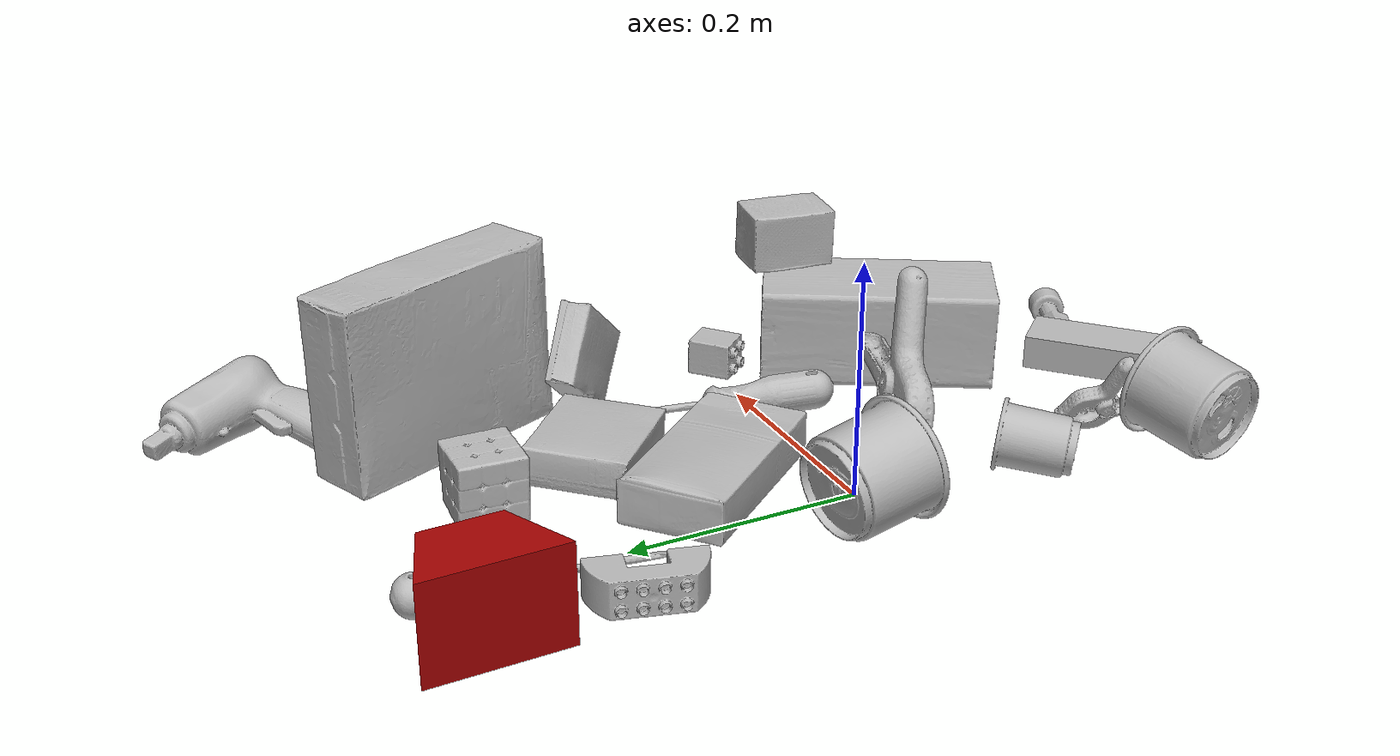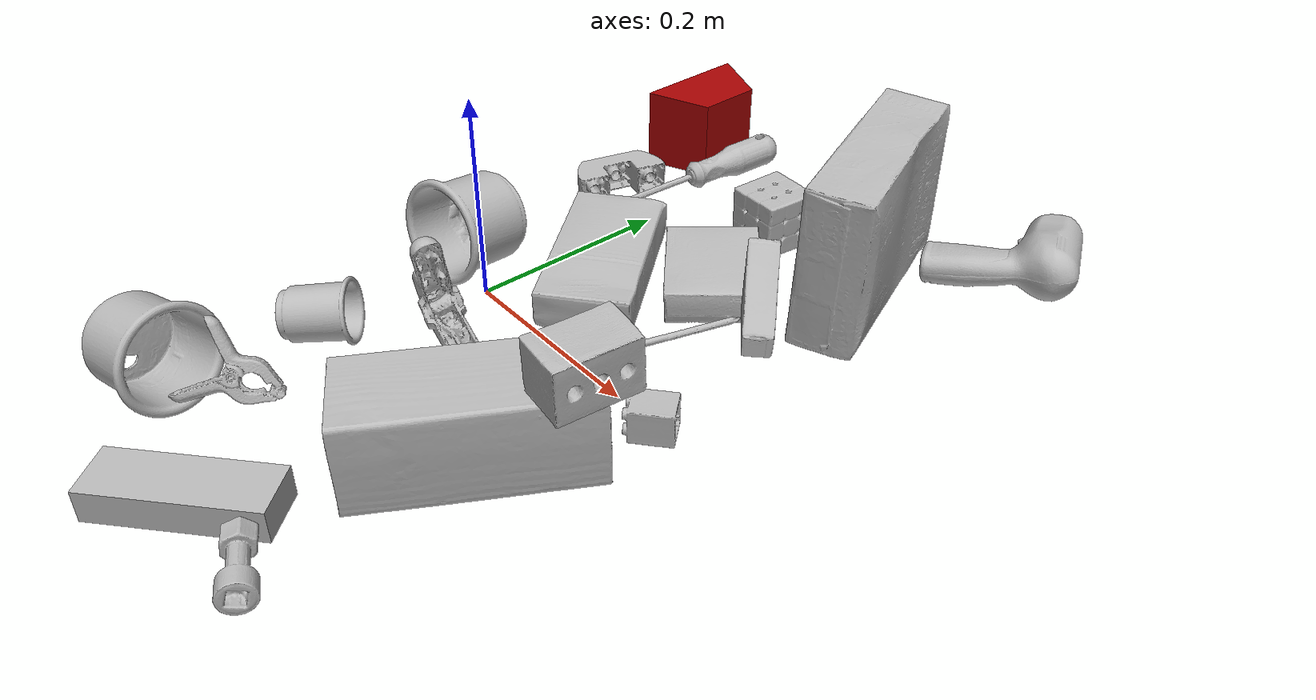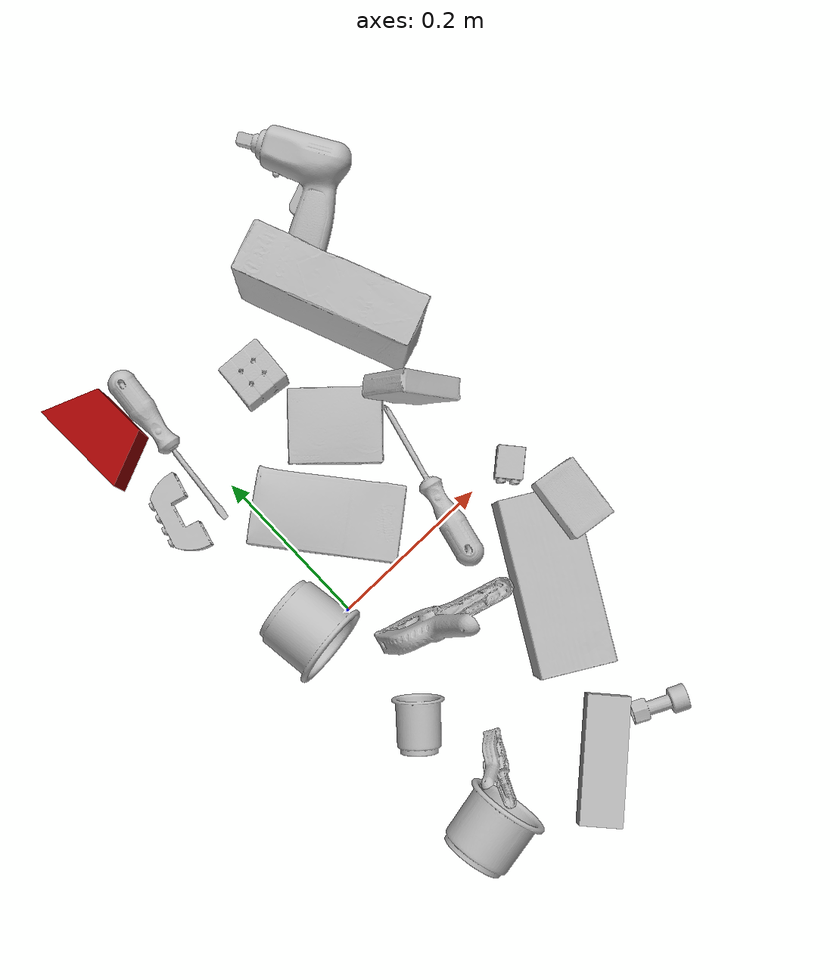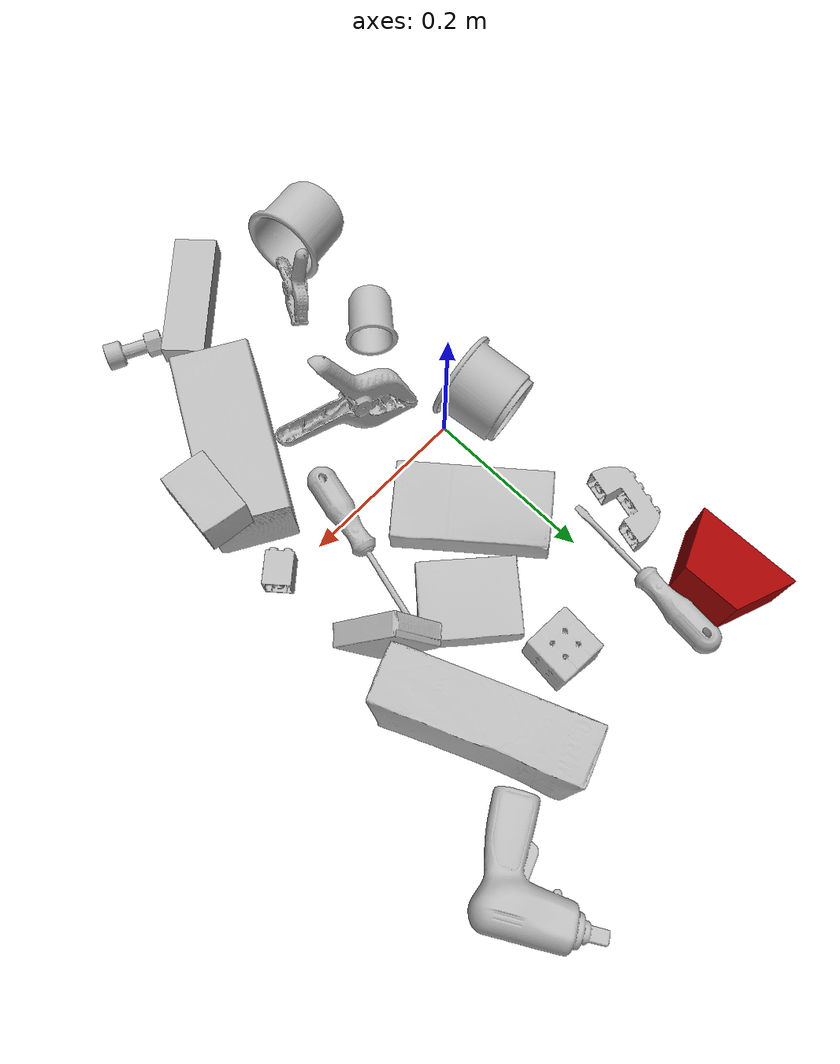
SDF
<sdf version="1.4">
  <world name="default">
    <light name="light1" type="point">
      <pose>0 0 1 0 0 0</pose>
      <diffuse>3 3 3 1</diffuse>
      <specular>3 3 3 1</specular>
    </light>
    <light name="light2" type="point">
      <pose>0 0.5 2 0 0 0</pose>
      <diffuse>1 1 1 1</diffuse>
      <specular>1 1 1 1</specular>
    </light>
    <light name="light3" type="point">
      <pose>0 0.5 2 0 0 0</pose>
      <diffuse>3 3 3 1</diffuse>
      <specular>3 3 3 1</specular>
    </light>
    <scene>
      <ambient>0.7 0.7 0.7</ambient>
    </scene>
    <model name="box21">
      <link name="link_box21">
        <collision name="default">
          <geometry>
            <mesh>
              <uri>model://cracker_box/collision_meshes/collision.obj</uri>
              <scale>1.0 1.0 1.0</scale>
            </mesh>
          </geometry>
          <surface>
            <friction>
              <ode>
                <mu>0.5</mu>
                <mu2>0.5</mu2>
              </ode>
            </friction>
          <contact>
        <ode>
            <max_vel>0</max_vel>
            <min_depth>0.0001</min_depth>
            <kp>1e8</kp>
        </ode>
    </contact></surface>
        </collision>
        <visual name="default">
          <geometry>
            <mesh>
              <uri>model://cracker_box/visual_meshes/visual.dae</uri>
              <scale>1.0 1.0 1.0</scale>
            </mesh>
          </geometry>
        </visual>
        <inertial>
          <mass>3.1344146728515625</mass>
          <pose>0.0009464123286306858 0.00025434247800149024 -0.0017029535956680775 -0.0003162077429326042 -0.011106488668875016 0.0025467950024750923</pose>
          <inertia>
            <ixx>0.0079725515</ixx>
            <iyy>0.01316425</iyy>
            <izz>0.01878659</izz>
            <ixy>0</ixy>
            <ixz>0</ixz>
            <iyz>0</iyz>
          </inertia>
        </inertial>
      </link>
      <pose>0.23143577575683594 0.2693440318107605 0.08213844150304794 -1.6031940600733603 0.003786523263994499 -1.1975162881143697</pose>
    </model>
    <model name="box22">
      <link name="link_box22">
        <collision name="default">
          <geometry>
            <mesh>
              <uri>model://jenga/collision_meshes/collision.obj</uri>
              <scale>1.0 1.0 1.0</scale>
            </mesh>
          </geometry>
          <surface>
            <friction>
              <ode>
                <mu>0.5</mu>
                <mu2>0.5</mu2>
              </ode>
            </friction>
          <contact>
        <ode>
            <max_vel>0</max_vel>
            <min_depth>0.0001</min_depth>
            <kp>1e8</kp>
        </ode>
    </contact></surface>
        </collision>
        <visual name="default">
          <geometry>
            <mesh>
              <uri>model://jenga/visual_meshes/visual.dae</uri>
              <scale>1.0 1.0 1.0</scale>
            </mesh>
          </geometry>
        </visual>
        <inertial>
          <mass>0.23869852721691132</mass>
          <pose>-2.502855807051674e-07 -0.0001025000965455547 -4.092339804628864e-05 0.0 -7.34215461761844e-07 0.0</pose>
          <inertia>
            <ixx>6.605367e-05</ixx>
            <iyy>0.00044757788</iyy>
            <izz>0.00047782745</izz>
            <ixy>0</ixy>
            <ixz>0</ixz>
            <iyz>0</iyz>
          </inertia>
        </inertial>
      </link>
      <pose>0.09389596432447433 -0.32775765657424927 0.015000000596046448 1.0762195257441099e-07 -2.7861496550805345e-09 0.7344153541987174</pose>
    </model>
    <model name="box23">
      <link name="link_box23">
        <collision name="default">
          <geometry>
            <mesh>
              <uri>model://rubiks_cube/collision_meshes/collision.obj</uri>
              <scale>1.0 1.0 1.0</scale>
            </mesh>
          </geometry>
          <surface>
            <friction>
              <ode>
                <mu>0.5</mu>
                <mu2>0.5</mu2>
              </ode>
            </friction>
          <contact>
        <ode>
            <max_vel>0</max_vel>
            <min_depth>0.0001</min_depth>
            <kp>1e8</kp>
        </ode>
    </contact></surface>
        </collision>
        <visual name="default">
          <geometry>
            <mesh>
              <uri>model://rubiks_cube/visual_meshes/visual.dae</uri>
              <scale>1.0 1.0 1.0</scale>
            </mesh>
          </geometry>
        </visual>
        <inertial>
          <mass>0.26229962706565857</mass>
          <pose>2.6721041649580002e-05 5.2569666877388954e-05 -7.264316082000732e-06 -0.05467189873579491 -0.09814109048128683 -0.0344550730209751</pose>
          <inertia>
            <ixx>0.00014493814</ixx>
            <iyy>0.00014426222</iyy>
            <izz>0.00014613918</izz>
            <ixy>0</ixy>
            <ixz>0</ixz>
            <iyz>0</iyz>
          </inertia>
        </inertial>
      </link>
      <pose>0.1071087047457695 0.27290740609169006 0.028679020702838898 -9.324811627033876e-08 -1.8194542610810362e-08 3.0711828806125405</pose>
    </model>
    <model name="cup1">
      <link name="link_cup1">
        <collision name="default">
          <geometry>
            <mesh>
              <uri>model://j_cups/collision_meshes/collision.obj</uri>
              <scale>1.0 1.0 1.0</scale>
            </mesh>
          </geometry>
          <surface>
            <friction>
              <ode>
                <mu>0.5</mu>
                <mu2>0.5</mu2>
              </ode>
            </friction>
          <contact>
        <ode>
            <max_vel>0</max_vel>
            <min_depth>0.0001</min_depth>
            <kp>1e8</kp>
        </ode>
    </contact></surface>
        </collision>
        <visual name="default">
          <geometry>
            <mesh>
              <uri>model://j_cups/visual_meshes/visual.dae</uri>
              <scale>1.0 1.0 1.0</scale>
            </mesh>
          </geometry>
        </visual>
        <inertial>
          <mass>0.10388943552970886</mass>
          <pose>0.0006164857186377048 0.0005398984649218619 -0.0013479008339345455 0.03030360356214998 0.03758024855654077 0.43868424196936845</pose>
          <inertia>
            <ixx>0.00015254253</ixx>
            <iyy>0.0001541288</iyy>
            <izz>0.00017584988</izz>
            <ixy>0</ixy>
            <ixz>0</ixz>
            <iyz>0</iyz>
          </inertia>
        </inertial>
      </link>
      <pose>-0.047990474849939346 0.017350109294056892 0.04709629714488983 -1.4431915253509904 0.09989863992522482 -2.9851068744913105</pose>
    </model>
    <model name="cup2">
      <link name="link_cup2">
        <collision name="default">
          <geometry>
            <mesh>
              <uri>model://i_cups/collision_meshes/collision.obj</uri>
              <scale>1.0 1.0 1.0</scale>
            </mesh>
          </geometry>
          <surface>
            <friction>
              <ode>
                <mu>0.5</mu>
                <mu2>0.5</mu2>
              </ode>
            </friction>
          <contact>
        <ode>
            <max_vel>0</max_vel>
            <min_depth>0.0001</min_depth>
            <kp>1e8</kp>
        </ode>
    </contact></surface>
        </collision>
        <visual name="default">
          <geometry>
            <mesh>
              <uri>model://i_cups/visual_meshes/visual.dae</uri>
              <scale>1.0 1.0 1.0</scale>
            </mesh>
          </geometry>
        </visual>
        <inertial>
          <mass>0.057485051453113556</mass>
          <pose>0.00011239853483857587 0.00016797262651380152 -0.000857901235576719 -0.028982969026390082 -0.03987335468246028 -0.34591562504163004</pose>
          <inertia>
            <ixx>7.958892e-05</ixx>
            <iyy>8.029015e-05</iyy>
            <izz>8.8953486e-05</izz>
            <ixy>0</ixy>
            <ixz>0</ixz>
            <iyz>0</iyz>
          </inertia>
        </inertial>
      </link>
      <pose>-0.05480831488966942 -0.29152294993400574 0.04500595107674599 -1.4174127263995329 0.6162403617880504 -1.2706496090664912</pose>
    </model>
    <model name="box11">
      <link name="link_box11">
        <collision name="default">
          <geometry>
            <mesh>
              <uri>model://wood_block/collision_meshes/collision.obj</uri>
              <scale>1.0 1.0 1.0</scale>
            </mesh>
          </geometry>
          <surface>
            <friction>
              <ode>
                <mu>0.5</mu>
                <mu2>0.5</mu2>
              </ode>
            </friction>
          <contact>
        <ode>
            <max_vel>0</max_vel>
            <min_depth>0.0001</min_depth>
            <kp>1e8</kp>
        </ode>
    </contact></surface>
        </collision>
        <visual name="default">
          <geometry>
            <mesh>
              <uri>model://wood_block/visual_meshes/visual.dae</uri>
              <scale>1.0 1.0 1.0</scale>
            </mesh>
          </geometry>
        </visual>
        <inertial>
          <mass>2.2218124866485596</mass>
          <pose>-5.813315510749817e-06 -0.000570809468626976 0.0002640858292579651 -0.052211005792275555 -0.005192694700552194 -0.006861375481739596</pose>
          <inertia>
            <ixx>0.0029731211</ixx>
            <iyy>0.009392092</iyy>
            <izz>0.009356961</izz>
            <ixy>0</ixy>
            <ixz>0</ixz>
            <iyz>0</iyz>
          </inertia>
        </inertial>
      </link>
      <pose>0.19217173755168915 -0.13688714802265167 0.045718539506196976 1.570417935544061 -0.006169349987770158 1.0529181810783361</pose>
    </model>
    <model name="box12">
      <link name="link_box12">
        <collision name="default">
          <geometry>
            <mesh>
              <uri>model://sugar_box/collision_meshes/collision.obj</uri>
              <scale>1.0 1.0 1.0</scale>
            </mesh>
          </geometry>
          <surface>
            <friction>
              <ode>
                <mu>0.5</mu>
                <mu2>0.5</mu2>
              </ode>
            </friction>
          <contact>
        <ode>
            <max_vel>0</max_vel>
            <min_depth>0.0001</min_depth>
            <kp>1e8</kp>
        </ode>
    </contact></surface>
        </collision>
        <visual name="default">
          <geometry>
            <mesh>
              <uri>model://sugar_box/visual_meshes/visual.dae</uri>
              <scale>1.0 1.0 1.0</scale>
            </mesh>
          </geometry>
        </visual>
        <inertial>
          <mass>1.0162616968154907</mass>
          <pose>0.0010343727190047503 3.849109634757042e-05 -0.00036364805418998003 -0.0004046261550277283 0.0010506634055573133 0.0026153787890220875</pose>
          <inertia>
            <ixx>0.00084674655</ixx>
            <iyy>0.002736858</iyy>
            <izz>0.0032763465</izz>
            <ixy>0</ixy>
            <ixz>0</ixz>
            <iyz>0</iyz>
          </inertia>
        </inertial>
      </link>
      <pose>0.0568184070289135 0.09661280363798141 0.022362403571605682 3.1412706875880874 -0.025108504832832963 2.2561140025957815</pose>
    </model>
    <model name="box13">
      <link name="link_box13">
        <collision name="default">
          <geometry>
            <mesh>
              <uri>model://pudding_box/collision_meshes/collision.obj</uri>
              <scale>1.0 1.0 1.0</scale>
            </mesh>
          </geometry>
          <surface>
            <friction>
              <ode>
                <mu>0.5</mu>
                <mu2>0.5</mu2>
              </ode>
            </friction>
          <contact>
        <ode>
            <max_vel>0</max_vel>
            <min_depth>0.0001</min_depth>
            <kp>1e8</kp>
        </ode>
    </contact></surface>
        </collision>
        <visual name="default">
          <geometry>
            <mesh>
              <uri>model://pudding_box/visual_meshes/visual.dae</uri>
              <scale>1.0 1.0 1.0</scale>
            </mesh>
          </geometry>
        </visual>
        <inertial>
          <mass>0.24922829866409302</mass>
          <pose>0.0004894822486676276 0.0008067885646596551 -0.0005188828217796981 0.005213100397381839 -0.006603797317439846 0.02007982889363753</pose>
          <inertia>
            <ixx>0.00028173975</ixx>
            <iyy>0.00018955652</iyy>
            <izz>0.0004160624</izz>
            <ixy>0</ixy>
            <ixz>0</ixz>
            <iyz>0</iyz>
          </inertia>
        </inertial>
      </link>
      <pose>0.13554102182388306 0.16547830402851105 0.01972581446170807 0.022347724121838684 -0.011391926729705609 0.8310244536775382</pose>
    </model>
    <model name="box14">
      <link name="link_box14">
        <collision name="default">
          <geometry>
            <mesh>
              <uri>model://gelatin_box/collision_meshes/collision.obj</uri>
              <scale>1.0 1.0 1.0</scale>
            </mesh>
          </geometry>
          <surface>
            <friction>
              <ode>
                <mu>0.5</mu>
                <mu2>0.5</mu2>
              </ode>
            </friction>
          <contact>
        <ode>
            <max_vel>0</max_vel>
            <min_depth>0.0001</min_depth>
            <kp>1e8</kp>
        </ode>
    </contact></surface>
        </collision>
        <visual name="default">
          <geometry>
            <mesh>
              <uri>model://gelatin_box/visual_meshes/visual.dae</uri>
              <scale>1.0 1.0 1.0</scale>
            </mesh>
          </geometry>
        </visual>
        <inertial>
          <mass>0.21856601536273956</mass>
          <pose>0.0004319618456065655 0.00011156871914863586 -0.00036403213744051754 -0.001050372093012012 -0.00475581868936722 0.016440559471878533</pose>
          <inertia>
            <ixx>0.00015428978</ixx>
            <iyy>0.000110208384</iyy>
            <izz>0.00023486343</izz>
            <ixy>0</ixy>
            <ixz>0</ixz>
            <iyz>0</iyz>
          </inertia>
        </inertial>
      </link>
      <pose>0.22714462876319885 0.1345289945602417 0.0550837479531765 -1.5534420115625451 0.8668996848126665 2.3590369795788346</pose>
    </model>
    <model name="cup15">
      <link name="link_cup15">
        <collision name="default">
          <geometry>
            <mesh>
              <uri>model://b_cups/collision_meshes/collision.obj</uri>
              <scale>1.0 1.0 1.0</scale>
            </mesh>
          </geometry>
          <surface>
            <friction>
              <ode>
                <mu>0.5</mu>
                <mu2>0.5</mu2>
              </ode>
            </friction>
          <contact>
        <ode>
            <max_vel>0</max_vel>
            <min_depth>0.0001</min_depth>
            <kp>1e8</kp>
        </ode>
    </contact></surface>
        </collision>
        <visual name="default">
          <geometry>
            <mesh>
              <uri>model://b_cups/visual_meshes/visual.dae</uri>
              <scale>1.0 1.0 1.0</scale>
            </mesh>
          </geometry>
        </visual>
        <inertial>
          <mass>0.04691024869680405</mass>
          <pose>0.0005182002787478268 0.0018058588029816747 -0.0013381802709773183 0.1135631498080702 0.03872518969029637 -0.3456955043116969</pose>
          <inertia>
            <ixx>3.0706047e-05</ixx>
            <iyy>3.012308e-05</iyy>
            <izz>2.5838557e-05</izz>
            <ixy>0</ixy>
            <ixz>0</ixz>
            <iyz>0</iyz>
          </inertia>
        </inertial>
      </link>
      <pose>-0.033014729619026184 -0.15133865177631378 0.02761855348944664 1.4331663057589819 -0.7372977141427204 2.5041460379390674</pose>
    </model>
    <model name="toy1">
      <link name="link_toy1">
        <collision name="default">
          <geometry>
            <mesh>
              <uri>model://e_lego_duplo/collision_meshes/collision.obj</uri>
              <scale>1.0 1.0 1.0</scale>
            </mesh>
          </geometry>
          <surface>
            <friction>
              <ode>
                <mu>0.5</mu>
                <mu2>0.5</mu2>
              </ode>
            </friction>
          <contact>
        <ode>
            <max_vel>0</max_vel>
            <min_depth>0.0001</min_depth>
            <kp>1e8</kp>
        </ode>
    </contact></surface>
        </collision>
        <visual name="default">
          <geometry>
            <mesh>
              <uri>model://e_lego_duplo/visual_meshes/visual.dae</uri>
              <scale>1.0 1.0 1.0</scale>
            </mesh>
          </geometry>
        </visual>
        <inertial>
          <mass>0.06732096523046494</mass>
          <pose>0.000325604691170156 0.00023485434940084815 0.001952146296389401 -0.02256754688519212 -6.825533823954374e-05 -0.007625149208872714</pose>
          <inertia>
            <ixx>1.40386455e-05</ixx>
            <iyy>5.761822e-05</iyy>
            <izz>5.6108554e-05</izz>
            <ixy>0</ixy>
            <ixz>0</ixz>
            <iyz>0</iyz>
          </inertia>
        </inertial>
      </link>
      <pose>-0.07146446406841278 0.21526098251342773 0.016279419884085655 1.5786390335436662 -0.0047690006166207725 -1.8376451588991631</pose>
    </model>
    <model name="toy2">
      <link name="link_toy2">
        <collision name="default">
          <geometry>
            <mesh>
              <uri>model://c_toy_airplane/collision_meshes/collision.obj</uri>
              <scale>1.0 1.0 1.0</scale>
            </mesh>
          </geometry>
          <surface>
            <friction>
              <ode>
                <mu>0.5</mu>
                <mu2>0.5</mu2>
              </ode>
            </friction>
          <contact>
        <ode>
            <max_vel>0</max_vel>
            <min_depth>0.0001</min_depth>
            <kp>1e8</kp>
        </ode>
    </contact></surface>
        </collision>
        <visual name="default">
          <geometry>
            <mesh>
              <uri>model://c_toy_airplane/visual_meshes/visual.dae</uri>
              <scale>1.0 1.0 1.0</scale>
            </mesh>
          </geometry>
        </visual>
        <inertial>
          <mass>0.036399733275175095</mass>
          <pose>-0.00023024277470540255 -4.4302899482318026e-07 -0.0060805329121649265 -0.006192184726307751 -0.016797944030005924 0.7654593329003626</pose>
          <inertia>
            <ixx>1.6714015e-05</ixx>
            <iyy>1.6666843e-05</iyy>
            <izz>3.9241195e-06</izz>
            <ixy>0</ixy>
            <ixz>0</ixz>
            <iyz>0</iyz>
          </inertia>
        </inertial>
      </link>
      <pose>0.1846003532409668 -0.32666337490081787 0.014966219663619995 -1.6246297537352667 0.9902536345462629 1.0777164981307714</pose>
    </model>
    <model name="toy3">
      <link name="link_toy3">
        <collision name="default">
          <geometry>
            <mesh>
              <uri>model://foam_brick/collision_meshes/collision.obj</uri>
              <scale>1.0 1.0 1.0</scale>
            </mesh>
          </geometry>
          <surface>
            <friction>
              <ode>
                <mu>0.5</mu>
                <mu2>0.5</mu2>
              </ode>
            </friction>
          <contact>
        <ode>
            <max_vel>0</max_vel>
            <min_depth>0.0001</min_depth>
            <kp>1e8</kp>
        </ode>
    </contact></surface>
        </collision>
        <visual name="default">
          <geometry>
            <mesh>
              <uri>model://foam_brick/visual_meshes/visual.dae</uri>
              <scale>1.0 1.0 1.0</scale>
            </mesh>
          </geometry>
        </visual>
        <inertial>
          <mass>0.28719362616539</mass>
          <pose>-0.0002522472059354186 0.00034584346576593816 -0.0002532101352699101 -0.2940183114741006 0.017274439707053432 -0.0007449906726392561</pose>
          <inertia>
            <ixx>0.00012545152</ixx>
            <iyy>0.00020028985</iyy>
            <izz>0.00020283528</izz>
            <ixy>0</ixy>
            <ixz>0</ixz>
            <iyz>0</iyz>
          </inertia>
        </inertial>
      </link>
      <pose>0.2636811137199402 -0.08059699833393097 0.11622922122478485 1.5769205710333767 -0.017668729031799092 1.4545904329391728</pose>
    </model>
    <model name="toy4">
      <link name="link_toy4">
        <collision name="default">
          <geometry>
            <mesh>
              <uri>model://prism/collision_meshes/collision.obj</uri>
              <scale>1.0 1.0 1.0</scale>
            </mesh>
          </geometry>
          <surface>
            <friction>
              <ode>
                <mu>0.5</mu>
                <mu2>0.5</mu2>
              </ode>
            </friction>
          <contact>
        <ode>
            <max_vel>0</max_vel>
            <min_depth>0.0001</min_depth>
            <kp>1e8</kp>
        </ode>
    </contact></surface>
        </collision>
        <visual name="default">
          <geometry>
            <mesh>
              <uri>model://prism/visual_meshes/visual.dae</uri>
              <scale>1.0 1.0 1.0</scale>
            </mesh>
          </geometry>
        </visual>
        <inertial>
          <mass>0.7170383930206299</mass>
          <pose>-9.85359656624496e-05 -4.96157269935793e-07 -0.0033869098406285048 0.0 0.006559181231804993 0.0</pose>
          <inertia>
            <ixx>0.0006471183</ixx>
            <iyy>0.0007820508</iyy>
            <izz>0.0009579188</izz>
            <ixy>0</ixy>
            <ixz>0</ixz>
            <iyz>0</iyz>
          </inertia>
        </inertial>
      </link>
      <pose>-0.06472504138946533 0.34180355072021484 0.041588522493839264 1.5836354385100444 4.714278051800182e-07 1.5919767726406693</pose>
    </model>
    <model name="toy5">
      <link name="link_toy5">
        <collision name="default">
          <geometry>
            <mesh>
              <uri>model://b_toy_airplane/collision_meshes/collision.obj</uri>
              <scale>1.0 1.0 1.0</scale>
            </mesh>
          </geometry>
          <surface>
            <friction>
              <ode>
                <mu>0.5</mu>
                <mu2>0.5</mu2>
              </ode>
            </friction>
          <contact>
        <ode>
            <max_vel>0</max_vel>
            <min_depth>0.0001</min_depth>
            <kp>1e8</kp>
        </ode>
    </contact></surface>
        </collision>
        <visual name="default">
          <geometry>
            <mesh>
              <uri>model://b_toy_airplane/visual_meshes/visual.dae</uri>
              <scale>1.0 1.0 1.0</scale>
            </mesh>
          </geometry>
        </visual>
        <inertial>
          <mass>0.399619996547699</mass>
          <pose>0.005081363022327423 0.004015584941953421 0.009543066844344139 -0.04001809649421662 -0.04022184162979335 -0.5601502893443677</pose>
          <inertia>
            <ixx>0.0007419019</ixx>
            <iyy>0.00029654545</iyy>
            <izz>0.0009229998</izz>
            <ixy>0</ixy>
            <ixz>0</ixz>
            <iyz>0</iyz>
          </inertia>
        </inertial>
      </link>
      <pose>0.30983874201774597 0.39731425046920776 0.035689081996679306 3.0695709689496815 0.07405939253308466 2.0908627950392424</pose>
    </model>
    <model name="toy6">
      <link name="link_toy6">
        <collision name="default">
          <geometry>
            <mesh>
              <uri>model://f_lego_duplo/collision_meshes/collision.obj</uri>
              <scale>1.0 1.0 1.0</scale>
            </mesh>
          </geometry>
          <surface>
            <friction>
              <ode>
                <mu>0.5</mu>
                <mu2>0.5</mu2>
              </ode>
            </friction>
          <contact>
        <ode>
            <max_vel>0</max_vel>
            <min_depth>0.0001</min_depth>
            <kp>1e8</kp>
        </ode>
    </contact></surface>
        </collision>
        <visual name="default">
          <geometry>
            <mesh>
              <uri>model://f_lego_duplo/visual_meshes/visual.dae</uri>
              <scale>1.0 1.0 1.0</scale>
            </mesh>
          </geometry>
        </visual>
        <inertial>
          <mass>0.05315950885415077</mass>
          <pose>2.3694145056651905e-05 0.0001339314185315743 0.0018837872194126248 0.029838727868319145 -0.014424898970195728 -0.6756716124708322</pose>
          <inertia>
            <ixx>1.1232896e-05</ixx>
            <iyy>1.1332969e-05</iyy>
            <izz>9.750634e-06</izz>
            <ixy>0</ixy>
            <ixz>0</ixz>
            <iyz>0</iyz>
          </inertia>
        </inertial>
      </link>
      <pose>0.2516974210739136 -0.007126571610569954 0.016501987352967262 -1.570795348661258 3.251880435846406e-06 2.2726388435739104</pose>
    </model>
    <model name="hardware1">
      <link name="link_hardware1">
        <collision name="default">
          <geometry>
            <mesh>
              <uri>model://flat_screwdriver/collision_meshes/collision.obj</uri>
              <scale>1.0 1.0 1.0</scale>
            </mesh>
          </geometry>
          <surface>
            <friction>
              <ode>
                <mu>0.5</mu>
                <mu2>0.5</mu2>
              </ode>
            </friction>
          <contact>
        <ode>
            <max_vel>0</max_vel>
            <min_depth>0.0001</min_depth>
            <kp>1e8</kp>
        </ode>
    </contact></surface>
        </collision>
        <visual name="default">
          <geometry>
            <mesh>
              <uri>model://flat_screwdriver/visual_meshes/visual.dae</uri>
              <scale>1.0 1.0 1.0</scale>
            </mesh>
          </geometry>
        </visual>
        <inertial>
          <mass>0.12191366404294968</mass>
          <pose>-0.0489187091588974 -0.0006576801533810794 -0.0006140916957519948 -0.5614853566550635 -0.0032337267722331534 0.006982277608032515</pose>
          <inertia>
            <ixx>1.4404012e-05</ixx>
            <iyy>0.00018286215</iyy>
            <izz>0.00018277747</izz>
            <ixy>0</ixy>
            <ixz>0</ixz>
            <iyz>0</iyz>
          </inertia>
        </inertial>
      </link>
      <pose>-0.01947781629860401 0.28446832299232483 0.015338653698563576 -0.2144086061712212 0.04069486878824873 -1.6774600912432127</pose>
    </model>
    <model name="hardware2">
      <link name="link_hardware2">
        <collision name="default">
          <geometry>
            <mesh>
              <uri>model://medium_clamp/collision_meshes/collision.obj</uri>
              <scale>1.0 1.0 1.0</scale>
            </mesh>
          </geometry>
          <surface>
            <friction>
              <ode>
                <mu>0.5</mu>
                <mu2>0.5</mu2>
              </ode>
            </friction>
          <contact>
        <ode>
            <max_vel>0</max_vel>
            <min_depth>0.0001</min_depth>
            <kp>1e8</kp>
        </ode>
    </contact></surface>
        </collision>
        <visual name="default">
          <geometry>
            <mesh>
              <uri>model://medium_clamp/visual_meshes/visual.dae</uri>
              <scale>1.0 1.0 1.0</scale>
            </mesh>
          </geometry>
        </visual>
        <inertial>
          <mass>0.018204163759946823</mass>
          <pose>0.005390994716435671 0.00039532413939014077 -0.0001222158025484532 -0.0012269240735234023 0.0025845026557488396 0.03820772126630794</pose>
          <inertia>
            <ixx>4.959469e-06</ixx>
            <iyy>7.217431e-06</iyy>
            <izz>1.1117007e-05</izz>
            <ixy>0</ixy>
            <ixz>0</ixz>
            <iyz>0</iyz>
          </inertia>
        </inertial>
      </link>
      <pose>-0.0013485130621120334 -0.24598422646522522 0.028395000845193863 -2.001613851423967 0.4998336653163904 0.8956493791072365</pose>
    </model>
    <model name="hardware3">
      <link name="link_hardware3">
        <collision name="default">
          <geometry>
            <mesh>
              <uri>model://large_clamp/collision_meshes/collision.obj</uri>
              <scale>1.0 1.0 1.0</scale>
            </mesh>
          </geometry>
          <surface>
            <friction>
              <ode>
                <mu>0.5</mu>
                <mu2>0.5</mu2>
              </ode>
            </friction>
          <contact>
        <ode>
            <max_vel>0</max_vel>
            <min_depth>0.0001</min_depth>
            <kp>1e8</kp>
        </ode>
    </contact></surface>
        </collision>
        <visual name="default">
          <geometry>
            <mesh>
              <uri>model://large_clamp/visual_meshes/visual.dae</uri>
              <scale>1.0 1.0 1.0</scale>
            </mesh>
          </geometry>
        </visual>
        <inertial>
          <mass>0.18972517549991608</mass>
          <pose>0.006369356997311115 0.0003585676895454526 -0.00018398048996459693 -0.002133071569430183 0.00967158655684735 0.02663316926682878</pose>
          <inertia>
            <ixx>0.0001673895</ixx>
            <iyy>0.00031788155</iyy>
            <izz>0.00045985627</izz>
            <ixy>0</ixy>
            <ixz>0</ixz>
            <iyz>0</iyz>
          </inertia>
        </inertial>
      </link>
      <pose>0.06129267066717148 -0.0797896757721901 0.053169913589954376 -1.789698377538335 0.5766199011954551 2.75680595190204</pose>
    </model>
    <model name="hardware4">
      <link name="link_hardware4">
        <collision name="default">
          <geometry>
            <mesh>
              <uri>model://phillips_screwdriver/collision_meshes/collision.obj</uri>
              <scale>1.0 1.0 1.0</scale>
            </mesh>
          </geometry>
          <surface>
            <friction>
              <ode>
                <mu>0.5</mu>
                <mu2>0.5</mu2>
              </ode>
            </friction>
          <contact>
        <ode>
            <max_vel>0</max_vel>
            <min_depth>0.0001</min_depth>
            <kp>1e8</kp>
        </ode>
    </contact></surface>
        </collision>
        <visual name="default">
          <geometry>
            <mesh>
              <uri>model://phillips_screwdriver/visual_meshes/visual.dae</uri>
              <scale>1.0 1.0 1.0</scale>
            </mesh>
          </geometry>
        </visual>
        <inertial>
          <mass>0.10424148291349411</mass>
          <pose>-0.047771818935871124 0.0010362300090491772 -0.000455554953077808 -0.15717568897110376 0.005850990280187748 -0.0021567475529960492</pose>
          <inertia>
            <ixx>1.2247306e-05</ixx>
            <iyy>0.00015355984</iyy>
            <izz>0.00015369034</izz>
            <ixy>0</ixy>
            <ixz>0</ixz>
            <iyz>0</iyz>
          </inertia>
        </inertial>
      </link>
      <pose>0.16916009783744812 0.03774920105934143 0.014107849448919296 1.4171669257845525 0.0326608342382991 1.3281395371837297</pose>
    </model>
  <physics type="ode">
      <max_contacts>50</max_contacts>
      <ode>
        <solver>
          <type>quick</type>
          <iters>75</iters>
        </solver>
        <constraints>
          <contact_max_correcting_vel>0</contact_max_correcting_vel>
          <contact_surface_layer>0</contact_surface_layer>
        </constraints>
      </ode>
    </physics></world>
</sdf>
